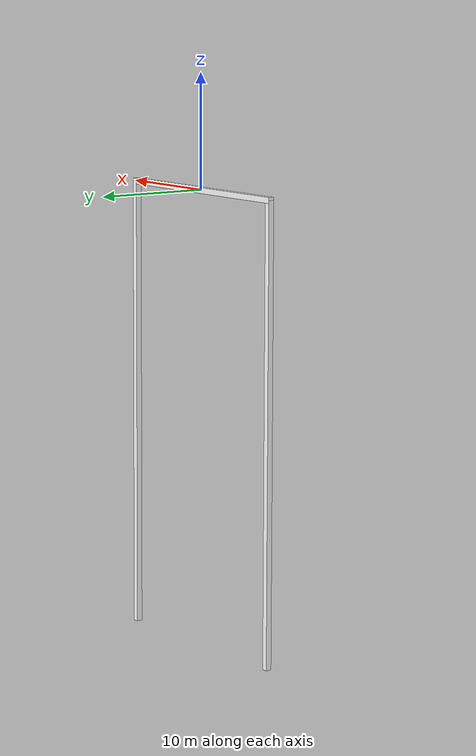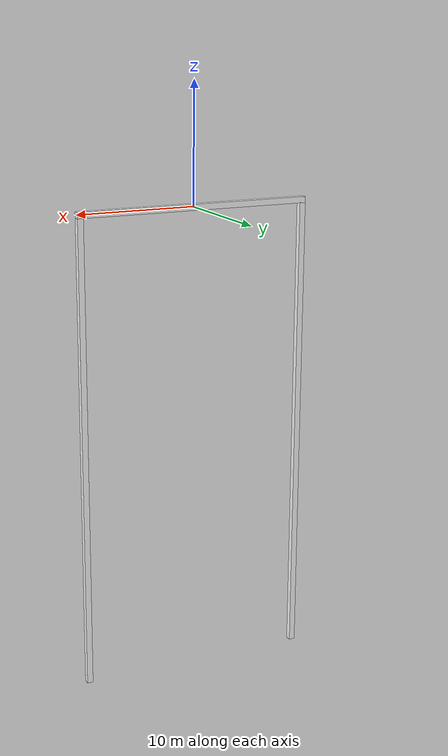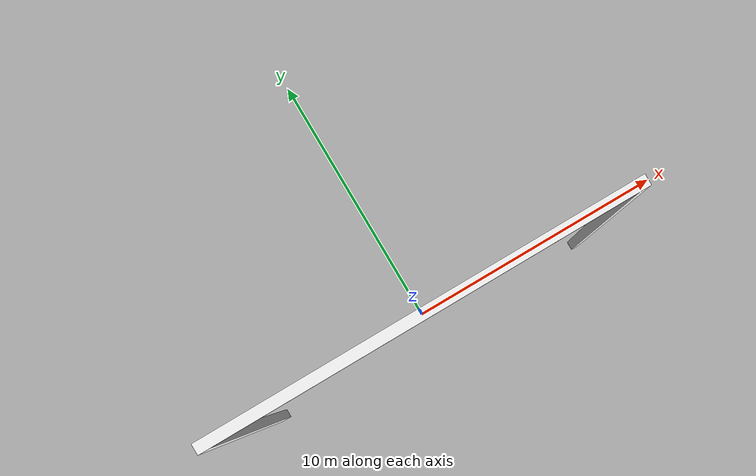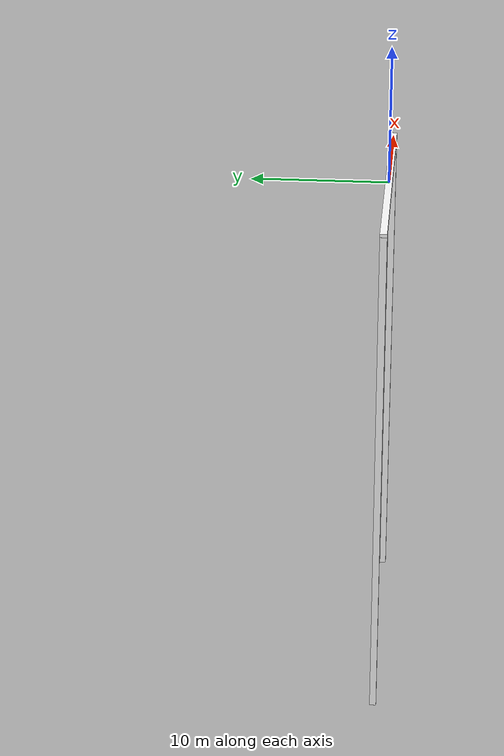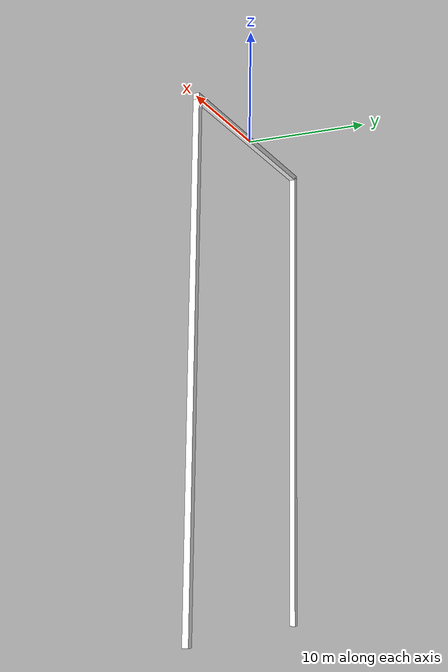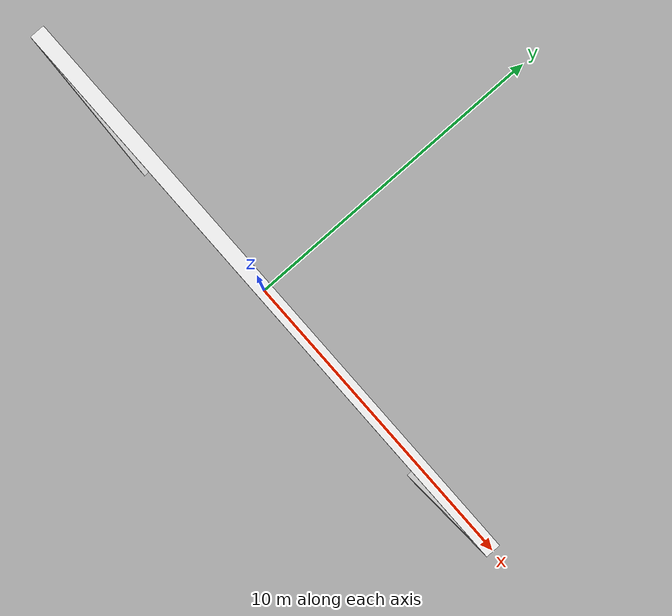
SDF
<?xml version="1.0" ?>
<sdf version="1.5">
    <model name="boundary">
			<static>true</static>
      <link name="bottom_link">

        <collision name="collision">
          <geometry>
            <box>
							<size>20.0 0.5 0.5</size>
						</box>
          </geometry>

          <surface>

            <bounce>
              <restitution_coefficient>2.0</restitution_coefficient>
              <threshold>0</threshold>
            </bounce>

						<friction>
							<ode>
								<mu>0.0</mu>
								<mu2>0.0</mu2>
							</ode>
						</friction>

            <contact>
              <ode>
                <max_vel>999</max_vel>
              </ode>
            </contact>

          </surface>

        </collision>

        <visual name="visual">
          <geometry>
            <box>
							<size>20.0 0.5 0.5</size>
						</box>
          </geometry>

					<material>
						<ambient>1.0 1.0 1.0 1</ambient>
						<diffuse>1.0 1.0 1.0 1</diffuse>
						<specular>1.0 1.0 1.0 1</specular>
					</material>
        </visual>

      </link>

			<link name="left_link">
				<pose>-9.75 0 -20 0 1.5707 0</pose>

				<collision name="collision">
					<geometry>
						<box>
							<size>40.0 0.5 0.5</size>
						</box>
					</geometry>

					<surface>

						<bounce>
							<restitution_coefficient>1.0</restitution_coefficient>
							<threshold>0</threshold>
						</bounce>

						<friction>
							<ode>
								<mu>0.0</mu>
								<mu2>0.0</mu2>
							</ode>
						</friction>

						<contact>
							<ode>
								<max_vel>999</max_vel>
							</ode>
						</contact>

					</surface>

				</collision>

				<visual name="visual">
					<geometry>
						<box>
							<size>40.0 0.5 0.5</size>
						</box>
					</geometry>

					<material>
						<ambient>1.0 1.0 1.0 1</ambient>
						<diffuse>1.0 1.0 1.0 1</diffuse>
						<specular>1.0 1.0 1.0 1</specular>
					</material>

				</visual>
			</link>

			<link name="right_link">
				<pose>9.75 0 -20 0 1.5707 0</pose>

				<collision name="collision">
					<geometry>
						<box>
							<size>40.0 0.5 0.5</size>
						</box>
					</geometry>

					<surface>

						<bounce>
							<restitution_coefficient>1.0</restitution_coefficient>
							<threshold>0</threshold>
						</bounce>

						<friction>
							<ode>
								<mu>0.0</mu>
								<mu2>0.0</mu2>
							</ode>
						</friction>

						<contact>
							<ode>
								<max_vel>999</max_vel>
							</ode>
						</contact>

					</surface>

				</collision>

				<visual name="visual">
					<geometry>
						<box>
							<size>40.0 0.5 0.5</size>
						</box>
					</geometry>

					<material>
						<ambient>1.0 1.0 1.0 1</ambient>
						<diffuse>1.0 1.0 1.0 1</diffuse>
						<specular>1.0 1.0 1.0 1</specular>
					</material>

				</visual>
			</link>

    </model>
</sdf>
